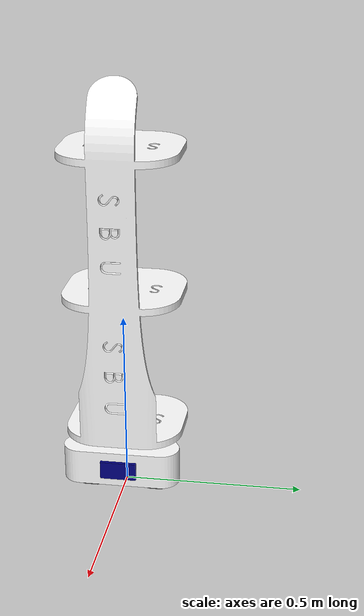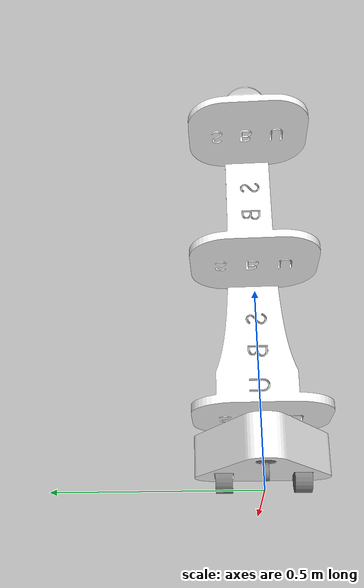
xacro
<?xml version="1.0"?>
<robot name="sbu_robot" xmlns:xacro="http://www.ros.org/wiki/xacro">

    <xacro:include filename="common_properties.xacro" />
    <xacro:include filename="mobile_base.xacro" />
    <xacro:include filename="mobile_base_gazebo.xacro" />
    <xacro:include filename="2d_lidar.xacro" />
    <xacro:include filename="camera.xacro" />
</robot>

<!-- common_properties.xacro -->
<robot xmlns:xacro="http://www.ros.org/wiki/xacro">

    <material name="blue">
        <color rgba="0 0 0.5 1" />
    </material>

    <material name="grey">
        <color rgba="0.5 0.5 0.5 1" />
    </material>
    <material name="white">
        <color rgba="1.0 1.0 1.0 1"/>
    </material>

    <material name="green">
        <color rgba="0 1.0 0 1"/>
    </material>

    <material name="red">
        <color rgba="1.0 0 0 1"/>
    </material>

    <xacro:macro name="box_inertia" params="m l w h xyz rpy">
        <inertial>
            <origin xyz="${xyz}" rpy="${rpy}"/>
            <mass value="${m}"/>
            <inertia ixx="${(m/12) * (h*h + w*w)}" ixy="0.0" ixz="0.0"
                     iyy="${(m/12) * (h*h + l*l)}" iyz="0.0"
                     izz="${(m/12) * (w*w + l*l)}"/>
        </inertial>

    </xacro:macro>

    <xacro:macro name="cylinder_inertia" params="m r l xyz rpy">
        <inertial>
            <origin xyz="${xyz}" rpy="${rpy}" />
            <mass value="${m}" />
            <inertia ixx="${(m/12) * (3*r*r + l*l)}" ixy="0.0" ixz="0.0"
                     iyy="${(m/2) * (r*r)}" iyz="0.0"
                     izz="${(m/12) * (3*r*r + l*l)}" />
        </inertial>

    </xacro:macro>

    <xacro:macro name="sphere_inertia" params="m r xyz rpy">
        <inertial>
            <origin xyz="${xyz}" rpy="${rpy}"/>
            <mass value="${m}"/>
            <inertia ixx="${(2*m/5) * (r*r)}" ixy="0.0" ixz="0.0"
                     iyy="${(2*m/5) * (r*r)}" iyz="0.0"
                     izz="${(2*m/5) * (r*r)}" />
        </inertial>

    </xacro:macro>

</robot>

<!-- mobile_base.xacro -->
<robot xmlns:xacro="http://www.ros.org/wiki/xacro">

    <xacro:property name="wheel_radius" value="0.04" />
    <xacro:property name="wheel_length" value="0.04" />

    <link name="base_footprint" />

    <link name="base_link">
        <visual>
            <geometry>
                <mesh filename="file://$(find sbu_robot_description)/meshes/base_link2.STL"
                      scale="0.001 0.001 0.001" />
            </geometry>
            <origin xyz="0 0 0" rpy="0 0 0" />
            <material name="white" />
        </visual>
        <inertial>
            <origin xyz="0 0 0" rpy="0 0 0"/>
            <mass value="1.96166"/>
            <inertia ixx="1.7307558e-02" ixy="0.0" ixz="-9.3540100e-06"
                     iyy="1.7302023e-02" iyz="0.0"
                     izz="2.8961675e-03"/>
        </inertial>
        <collision>
            <geometry>
                <mesh filename="file://$(find sbu_robot_description)/meshes/base_link.STL"
                      scale="0.001 0.001 0.001" />
            </geometry>
            <origin xyz="0 0 0" rpy="0 0 0" />
        </collision>

    </link>

    <xacro:macro name="wheel_link" params="prefix">
        <link name="${prefix}_wheel_link">
            <visual>
                <geometry>
                    <cylinder radius="${wheel_radius}" length="${wheel_length}" />
                </geometry>
                <origin xyz="0 0 0" rpy="${pi / 2.0} 0 0" />
                <material name="grey" />
            </visual>
            <collision>
                <geometry>
                    <cylinder radius="${wheel_radius}" length="${wheel_length}" />
                </geometry>
                <origin xyz="0 0 0" rpy="${pi / 2.0} 0 0" />
            </collision>
            <xacro:cylinder_inertia m="0.2" r="${wheel_radius}" l="${wheel_length}"
                                    xyz="0 0 0" rpy="${pi / 2.0} 0 0" />
        </link>
    </xacro:macro>

    <xacro:wheel_link prefix="right" />
    <xacro:wheel_link prefix="left" />

    <link name="caster_wheel_link_1">
        <visual>
            <geometry>
                <cylinder radius="0.02" length="0.01"/>
            </geometry>
            <origin xyz="0 0 0.005" rpy="0 0 0" />
            <material name="grey" />
        </visual>
        <collision>
            <geometry>
                <cylinder radius="0.02" length="0.01"/>
            </geometry>
            <origin xyz="0 0 0.005" rpy="0 0 0" />
        </collision>
        <xacro:cylinder_inertia m="0.1" r="0.02" l="0.01"
                              xyz="0 0 0.005" rpy="0 0 0" />
    </link>

    <link name="caster_wheel_link_2">
        <visual>
            <geometry>
                <cylinder radius="0.02" length="0.01"/>
            </geometry>
            <origin xyz="0 0 0" rpy="${pi / 2.0} 0 0" />
            <material name="grey" />
        </visual>
        <collision>
            <geometry>
                <cylinder radius="0.02" length="0.01"/>
            </geometry>
            <origin xyz="0 0 0" rpy="${pi / 2.0} 0 0" />
        </collision>
        <xacro:cylinder_inertia m="0.1" r="0.02" l="0.01"
                              xyz="0 0 0" rpy="${pi / 2.0} 0 0" />
    </link>

    <joint name="base_joint" type="fixed">
        <parent link="base_footprint"/>
        <child link="base_link"/>
        <origin xyz="0 0 ${wheel_radius}" rpy="0 0 0" />
    </joint>

    <joint name="base_right_wheel_joint" type="continuous">
        <parent link="base_link"/>
        <child link="right_wheel_link"/>
        <origin xyz="0.0425 -0.0925 0" rpy="0 0 0" />
        <axis xyz="0 1 0" />
    </joint>

    <joint name="base_left_wheel_joint" type="continuous">
        <parent link="base_link"/>
        <child link="left_wheel_link"/>
        <origin xyz="0.0425 0.0925 0" rpy="0 0 0" />
        <axis xyz="0 1 0" />
    </joint>

    <joint name="caster_wheel_joint_1" type="fixed">
        <parent link="base_link" />
        <child link="caster_wheel_link_1" />
        <origin xyz="-0.13 0 0" rpy="0 0 0" />
        <axis xyz="0 0 1" />
    </joint>

    <joint name="caster_wheel_joint_2" type="fixed">
        <parent link="caster_wheel_link_1" />
        <child link="caster_wheel_link_2" />
        <origin xyz="0 0 ${-wheel_radius / 2.0}" rpy="0 0 0" />
        <axis xyz="0 1 0" />
    </joint>

</robot>

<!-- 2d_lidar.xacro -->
<robot xmlns:xacro="http://www.ros.org/wiki/xacro">

    <xacro:property name="lidar_radius" value="0.05" />
    <xacro:property name="lidar_length" value="0.01" />

    <link name="lidar_link">
        <visual>
            <geometry>
                <cylinder radius="${lidar_radius}" length="${lidar_length}" />
            </geometry>
            <origin xyz="0 0 0" rpy="0 0 0" />
            <material name="red" />
        </visual>
        <xacro:macro name="lidar_inertia" params="m r l xyz rpy">
            <inertial>
                <origin xyz="${xyz}" rpy="${rpy}" />
                <mass value="${m}" />
                <inertia ixx="${(m/12) * (3*r*r + l*l)}" ixy="0.0" ixz="0.0"
                         iyy="${(m/12) * (3*r*r + l*l)}" iyz="0.0"
                         izz="${(m/2) * (r*r)}" />
            </inertial>
        </xacro:macro>

        <xacro:lidar_inertia m="0.1" r="${lidar_radius}" l="${lidar_length}"
                             xyz="0 0 0" rpy="0 0 0" />

    </link>

    <joint name="base_lidar_joint" type="fixed">
        <parent link="base_link"/>
        <child link="lidar_link"/>
        <origin xyz="0 0 0.105" rpy="0 0 0"/>
    </joint>

    <gazebo reference="lidar_link">
        <material>Gazebo/Red</material>
        <sensor name="lidar" type="ray">
            <always_on>true</always_on>
            <visualize>true</visualize>
            <update_rate>5</update_rate>
            <ray>
              <scan>
                <horizontal>
                  <samples>360</samples>
                  <resolution>1.00000</resolution>
                  <min_angle>0.000000</min_angle>
                  <max_angle>6.280000</max_angle>
                </horizontal>
              </scan>
              <range>
                <min>0.120000</min>
                <max>3.5</max>
                <resolution>0.015000</resolution>
              </range>
              <noise>
                <type>gaussian</type>
                <mean>0.0</mean>
                <stddev>0.01</stddev>
              </noise>
            </ray>
            <plugin name="scan" filename="libgazebo_ros_ray_sensor.so">
              <ros>
                <remapping>~/out:=scan</remapping>
              </ros>
              <output_type>sensor_msgs/LaserScan</output_type>
              <frame_name>lidar_link</frame_name>
            </plugin>
        </sensor>
    </gazebo>

</robot>

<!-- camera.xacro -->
<robot xmlns:xacro="http://www.ros.org/wiki/xacro">

    <xacro:property name="camera_length" value="0.01" />
    <xacro:property name="camera_width" value="0.1" />
    <xacro:property name="camera_height" value="0.05" />

    <link name="camera_link">

        <visual>
            <geometry>
                <box size="${camera_length} ${camera_width} ${camera_height}" />
            </geometry>
            <material name="blue" />
        </visual>
        <collision>
            <geometry>
                <box size="${camera_length} ${camera_width} ${camera_height}"/>
            </geometry>
        </collision>
        <xacro:box_inertia  m="0.00625" l="${camera_length}" w="${camera_width}" h="${camera_height}"
                            xyz="0 0 0" rpy="0 0 0" />
    </link>

    <joint name="base_camera_joint" type="fixed">
        <parent link="base_link"/>
        <child link="camera_link"/>
        <origin xyz="${(0.23 + camera_length) / 2.0} 0 ${0.1 / 2.0}" rpy="0 0 0"/>
    </joint>

    <link name="optical"/>

    <joint name="camera_optical_joint" type="fixed">
        <origin xyz="0 0 0" rpy="${-pi/2} 0 ${-pi/2}"/>
        <parent link="camera_link"/>
        <child link="optical"/>
    </joint>

    <gazebo reference="camera_link">
        <material>Gazebo/Red</material>

        <sensor name="camera" type="depth">
            <pose>0 0 0 0 0 0</pose>
            <always_on>true</always_on>
            <visualize>true</visualize>
            <update_rate>30</update_rate>
            <camera name="intel_realsense_r200">
                <horizental_fov>1.02974</horizental_fov>
                <image>
                    <format>B8G8R8</format>
                    <width>640</width>
                    <height>480</height>
                </image>
                <clip>
                    <near>0.02</near>
                    <far>300</far>
                </clip>
                <noise>
                    <type>gaussian</type>
                    <mean>0.0</mean>
                    <stddev>0.007</stddev>
                </noise>
            </camera>
            <plugin name="camera_driver" filename="libgazebo_ros_camera.so">
                <frame_name>optical</frame_name>
                <min_depth>0.1</min_depth>
                <max_depth>100.0</max_depth>
            </plugin>
        </sensor>
    </gazebo>

</robot>
